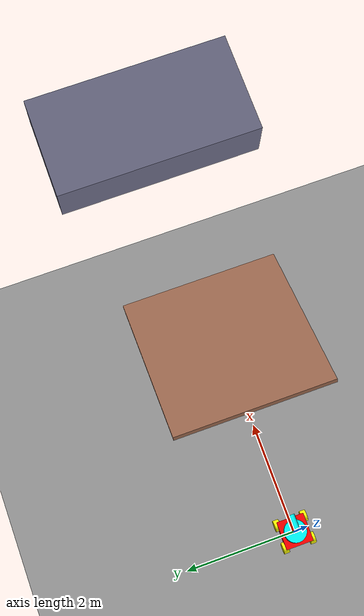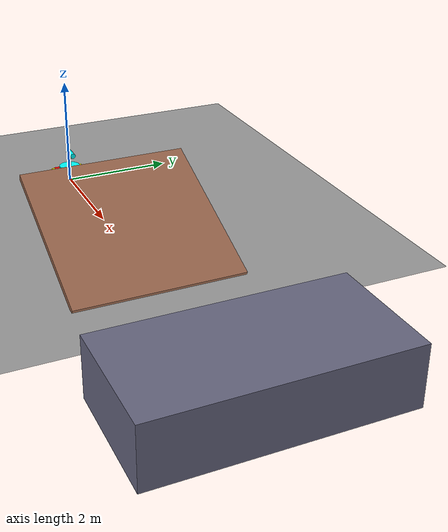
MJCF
<?xml version="1.0" encoding="utf-8"?>
<!--
  jump.xml —— 飞坡场景
  平地 + 起跳台（约 21° 陡坡）+ 落点平台。
  机器人加速冲上起跳台后腾空，测试着落/稳定性。
  调 kicker 的 euler（0.4）和 landing 的位置/高度可改变跳远/跳高。
-->
<mujoco model="sentry_scene_jump">
  <include file="../sentry_robot.xml"/>

  <statistic center="0 0 0.3" extent="2.5"/>

  <visual>
    <headlight diffuse="0.6 0.6 0.6" ambient="0.1 0.1 0.1" specular="0 0 0"/>
    <rgba haze="0.15 0.25 0.35 1"/>
    <global azimuth="120" elevation="-20"/>
  </visual>

  <asset>
    <texture type="skybox" builtin="gradient" rgb1="0.3 0.5 0.7" rgb2="0 0 0" width="512" height="3072"/>
    <texture type="2d" name="groundplane" builtin="checker" mark="edge" rgb1="0.2 0.3 0.4" rgb2="0.1 0.2 0.3"
      markrgb="0.8 0.8 0.8" width="300" height="300"/>
    <material name="groundplane" texture="groundplane" texuniform="true" texrepeat="5 5"/>
  </asset>

  <worldbody>
    <light pos="0 0 3" dir="0 0 -1" directional="true"/>
    <geom name="floor" type="plane" size="6 6 0.1" material="groundplane" rgba="0.6 0.6 0.6 1"/>
    <!-- 起跳台：3m 长，绕 y 倾斜 0.4 rad(~21°)，低端 x≈2 高端 x≈5 -->
    <geom name="kicker" type="box" size="1.5 1.5 0.05" pos="3.5 0 0.58" euler="0 0.4 0" rgba="0.6 0.4 0.3 1"/>
    <!-- 落点平台：调整 pos 控制落地距离/高度 -->
    <geom name="landing" type="box" size="1 2 0.5" pos="8 0 0.5" rgba="0.4 0.4 0.5 1"/>
  </worldbody>
</mujoco>

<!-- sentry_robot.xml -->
<mujoco model="sentry_robot">
  <compiler angle="radian" coordinate="local"/>
  <option timestep="0.002"/>

  <worldbody>
    <!-- ============ 底盘（原 base_link，含 freejoint 使其可在地面移动） ============ -->
    <body name="base_link" pos="0 0 0.15">
      <freejoint/>
      <!-- 占位惯性：整体约 10kg 底盘（含电机电池），按需调整 -->
      <inertial pos="0 0 0" mass="10" diaginertia="0.217 0.217 0.417"/>
      <geom name="base" type="box" size="0.25 0.25 0.05" rgba="1 0 0 1"/>

      <!-- 云台：bigyaw（绕 z） -->
      <body name="bigyaw_link" pos="0 0 0.1">
        <joint name="bigyaw_joint" axis="0 0 1"/>
        <inertial pos="0 0 0" mass="1.0" diaginertia="0.011 0.011 0.02"/>
        <geom name="bigyaw" type="cylinder" size="0.2 0.05" rgba="0 1 1 1"/>

        <!-- 云台：small_yaw（绕 z） -->
        <body name="small_yaw_link" pos="0 0 0.1">
          <joint name="small_yaw_joint" axis="0 0 1"/>
          <inertial pos="0 0 0" mass="0.2" diaginertia="0.0015 0.0015 0.0001"/>
          <geom name="small_yaw" type="cylinder" size="0.03 0.15" rgba="0 0 1 1"/>

          <!-- 云台：pitch（绕 y） -->
          <body name="pitch_link" pos="0 0 0.25">
            <joint name="pitch_joint" axis="0 1 0"/>
            <inertial pos="0 0 0" mass="0.3" diaginertia="0.0021 0.0021 0.0004"/>
            <geom name="pitch" type="cylinder" size="0.05 0.14" pos="0.14 0 0"
                  quat="0.707105 0 0.707108 0" rgba="0 1 1 1"/>
          </body>
        </body>
      </body>

      <!-- 四个麦轮（绕 y 轴，半径 0.1） -->
      <body name="left_wheel_front_link" pos="-0.2 0.25 -0.05">
        <joint name="left_wheel_front_joint" axis="0 1 0"/>
        <inertial pos="0 0 0" mass="0.5" diaginertia="0.0017 0.0017 0.0025"/>
        <geom name="left_wheel_front" type="cylinder" size="0.1 0.05"
              quat="0.707105 0.707108 0 0" rgba="1 1 0 1"/>
      </body>
      <body name="right_wheel_front_link" pos="-0.2 -0.25 -0.05">
        <joint name="right_wheel_front_joint" axis="0 1 0"/>
        <inertial pos="0 0 0" mass="0.5" diaginertia="0.0017 0.0017 0.0025"/>
        <geom name="right_wheel_front" type="cylinder" size="0.1 0.05"
              quat="0.707105 0.707108 0 0" rgba="1 1 0 1"/>
      </body>
      <body name="left_wheel_back_link" pos="0.2 0.25 -0.05">
        <joint name="left_wheel_back_joint" axis="0 1 0"/>
        <inertial pos="0 0 0" mass="0.5" diaginertia="0.0017 0.0017 0.0025"/>
        <geom name="left_wheel_back" type="cylinder" size="0.1 0.05"
              quat="0.707105 0.707108 0 0" rgba="1 1 0 1"/>
      </body>
      <body name="right_wheel_back_link" pos="0.2 -0.25 -0.05">
        <joint name="right_wheel_back_joint" axis="0 1 0"/>
        <inertial pos="0 0 0" mass="0.5" diaginertia="0.0017 0.0017 0.0025"/>
        <geom name="right_wheel_back" type="cylinder" size="0.1 0.05"
              quat="0.707105 0.707108 0 0" rgba="1 1 0 1"/>
      </body>
    </body>
  </worldbody>

  <!-- ============ 执行器：全用 motor（力矩/effort 控制，对应你的 effort 指令链） ============
       数量 = 7，与 URDF ros2_control 的 7 个关节一一对应；
       ctrlrange 是力矩限幅（云台 ±10 N·m，轮子 ±30 N·m），按需调整。 -->
  <actuator>
    <motor name="bigyaw_motor"     joint="bigyaw_joint"          ctrlrange="-10 10"/>
    <motor name="small_yaw_motor"  joint="small_yaw_joint"       ctrlrange="-10 10"/>
    <motor name="pitch_motor"      joint="pitch_joint"           ctrlrange="-10 10"/>
    <motor name="left_wheel_front_motor"  joint="left_wheel_front_joint"  ctrlrange="-30 30"/>
    <motor name="right_wheel_front_motor" joint="right_wheel_front_joint" ctrlrange="-30 30"/>
    <motor name="left_wheel_back_motor"   joint="left_wheel_back_joint"   ctrlrange="-30 30"/>
    <motor name="right_wheel_back_motor"  joint="right_wheel_back_joint"  ctrlrange="-30 30"/>
  </actuator>
</mujoco>
